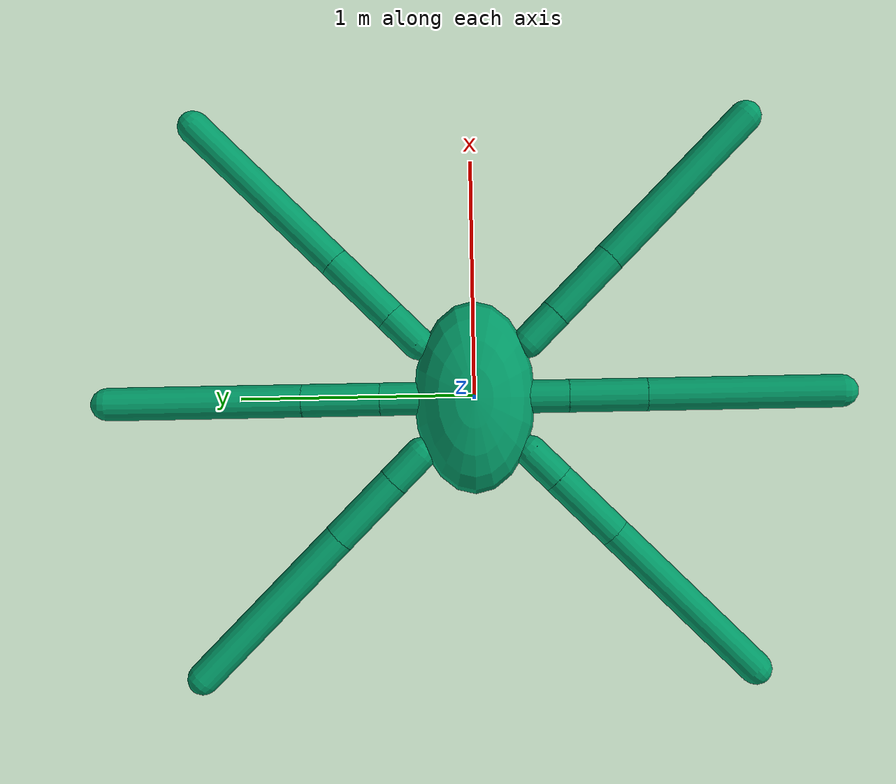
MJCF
<mujoco model="hexapod">
  <compiler angle="degree" coordinate="local" inertiafromgeom="true"/>
  <option integrator="RK4" timestep="0.01"/>
  <size nconmax="100"/>

  <default>
    <joint armature="1" damping="1" limited="true"/>
    <geom conaffinity="0" condim="3" density="5.0" friction="1 0.5 0.5" margin="0.01" rgba="0.0 0.6 0.4 1"/>
  </default>

  <asset>
    <texture type="skybox" builtin="gradient" width="100" height="100" rgb1="1 1 1" rgb2="0 0 0" />
    <texture name="texgeom" type="cube" builtin="flat" mark="cross" width="127" height="1278" rgb1="0.8 0.6 0.4" rgb2="0.8 0.6 0.4" markrgb="1 1 1" random="0.01" />
    <texture name="texplane" type="2d" width="1" height="1" file="wood2.png"/>
    <material name="MatPlane" reflectance="0.0" shininess="1" specular="1" texrepeat="10 10" texture="texplane"/>
    <material name='geom' texture="texgeom" texuniform="true" />
  </asset>

  <worldbody>
    <light cutoff="100" diffuse="1 1 1" dir="-0 0 -1.3" directional="true" exponent="1" pos="0 0 1.3" specular=".1 .1 .1"/>
    <geom conaffinity="1" condim="3" material="MatPlane" name="floor" pos="8 0 0" rgba="0.8 0.9 0.8 1" size="12 4 1" type="plane"/>
    <body name="torso" pos="0 0 0.75">
      <camera name="track" mode="track" pos="1 -7 3.2" xyaxes="1 0 0 0 0.5 1"/>
      <geom name="torso_geom" pos="0 0 0" size="0.35 0.22 0.15" type="ellipsoid"/>
      <joint armature="0" damping="0" limited="false" margin="0.01" name="root" pos="0 0 0" type="free"/>

      <body name="front_left_leg" pos="0.2 0.2 0">
        <joint axis="0 0 1" name="coxa_fl" pos="0.0 0.0 0.0" range="-20 20" type="hinge"/>
          <geom fromto="0.0 0.0 0.0 0.1 0.1 0.0" name="coxa_fl_geom" size="0.06" type="capsule"/>
          <body pos="0.1 0.1 0">
            <joint axis="-1 1 0" name="femur_fl" pos="0.0 0.0 0.0" range="-50 0" type="hinge"/>
            <geom fromto="0.0 0.0 0.0 0.2 0.2 0.0" name="femur_fl_geom" size="0.06" type="capsule"/>
             <body pos="0.2 0.2 0">
                <joint axis="-1 1 0" name="tibia_fl" pos="0.0 0.0 0.0" range="50 100" type="hinge"/>
                <geom fromto="0.0 0.0 0.0 0.5 0.5 0.0" name="tibia_fl_geom" size="0.06" type="capsule"/>
            </body>
          </body>
      </body>

      <body name="mid_left_leg" pos="0.0 0.2 0">
        <joint axis="0 0 1" name="coxa_ml" pos="0.0 0.0 0.0" range="-20 20" type="hinge"/>
          <geom fromto="0.0 0.0 0.0 0.0 0.14142 0.0" name="coxa_ml_geom" size="0.06" type="capsule"/>
          <body pos="0.0 0.14142 0">
            <joint axis="-1 0 0" name="femur_ml" pos="0.0 0.0 0.0" range="-50 0" type="hinge"/>
            <geom fromto="0.0 0.0 0.0 0.0 0.28284 0.0" name="femur_ml_geom" size="0.06" type="capsule"/>
             <body pos="0.0 0.28284 0">
                <joint axis="-1 0 0" name="tibia_ml" pos="0.0 0.0 0.0" range="50 100" type="hinge"/>
                <geom fromto="0.0 0.0 0.0 0.0 0.7071 0.0" name="tibia_ml_geom" size="0.06" type="capsule"/>
            </body>
          </body>
      </body>

      <body name="front_right_leg" pos="0.2 -0.2 0">
        <joint axis="0 0 1" name="coxa_fr" pos="0.0 0.0 0.0" range="-20 20" type="hinge"/>
          <geom fromto="0.0 0.0 0.0 0.1 -0.1 0.0" name="coxa_fr_geom" size="0.06" type="capsule"/>
          <body pos="0.1 -0.1 0">
            <joint axis="1 1 0" name="femur_fr" pos="0.0 0.0 0.0" range="-50 0" type="hinge"/>
            <geom fromto="0.0 0.0 0.0 0.2 -0.2 0.0" name="femur_fr_geom" size="0.06" type="capsule"/>
             <body pos="0.2 -0.2 0">
                <joint axis="1 1 0" name="tibia_fr" pos="0.0 0.0 0.0" range="50 100" type="hinge"/>
                <geom fromto="0.0 0.0 0.0 0.5 -0.5 0.0" name="tibia_fr_geom" size="0.06" type="capsule"/>
            </body>
          </body>
      </body>

      <body name="mid_right_leg" pos="0.0 -0.2 0">
        <joint axis="0 0 1" name="coxa_mr" pos="0.0 0.0 0.0" range="-20 20" type="hinge"/>
          <geom fromto="0.0 0.0 0.0 0.0 -0.14142 0.0" name="coxa_mr_geom" size="0.06" type="capsule"/>
          <body pos="0.0 -0.14142 0">
            <joint axis="1 0 0" name="femur_mr" pos="0.0 0.0 0.0" range="-50 0" type="hinge"/>
            <geom fromto="0.0 0.0 0.0 0.0 -0.28284 0.0" name="femur_mr_geom" size="0.06" type="capsule"/>
             <body pos="0.0 -0.28284 0">
                <joint axis="1 0 0" name="tibia_mr" pos="0.0 0.0 0.0" range="50 100" type="hinge"/>
                <geom fromto="0.0 0.0 0.0 0.0 -0.7071 0.0" name="tibia_mr_geom" size="0.06" type="capsule"/>
            </body>
          </body>
      </body>

      <body name="back_right_leg" pos="-0.2 -0.2 0">
        <joint axis="0 0 1" name="coxa_rr" pos="0.0 0.0 0.0" range="-20 20" type="hinge"/>
          <geom fromto="0.0 0.0 0.0 -0.1 -0.1 0.0" name="coxa_rr_geom" size="0.06" type="capsule"/>
          <body pos="-0.1 -0.1 0">
            <joint axis="1 -1 0" name="femur_rr" pos="0.0 0.0 0.0" range="-50 0" type="hinge"/>
            <geom fromto="0.0 0.0 0.0 -0.2 -0.2 0.0" name="femur_rr_geom" size="0.06" type="capsule"/>
             <body pos="-0.2 -0.2 0">
                <joint axis="1 -1 0" name="tibia_rr" pos="0.0 0.0 0.0" range="50 100" type="hinge"/>
                <geom fromto="0.0 0.0 0.0 -0.5 -0.5 0.0" name="tibia_rr_geom" size="0.06" type="capsule"/>
            </body>
          </body>
      </body>

      <body name="back_left_leg" pos="-0.2 0.2 0">
        <joint axis="0 0 1" name="coxa_rl" pos="0.0 0.0 0.0" range="-20 20" type="hinge"/>
          <geom fromto="0.0 0.0 0.0 -0.1 0.1 0.0" name="coxa_rl_geom" size="0.06" type="capsule"/>
          <body pos="-0.1 0.1 0">
            <joint axis="-1 -1 0" name="femur_rl" pos="0.0 0.0 0.0" range="-50 0" type="hinge"/>
            <geom fromto="0.0 0.0 0.0 -0.2 0.2 0.0" name="femur_rl_geom" size="0.06" type="capsule"/>
             <body pos="-0.2 0.2 0">
                <joint axis="-1 -1 0" name="tibia_rl" pos="0.0 0.0 0.0" range="50 100" type="hinge"/>
                <geom fromto="0.0 0.0 0.0 -0.5 0.5 0.0" name="tibia_rl_geom" size="0.06" type="capsule"/>
            </body>
          </body>
      </body>

    </body>
  </worldbody>
  <actuator>
    <motor ctrllimited="true" ctrlrange="-1.0 1.0" joint="coxa_fl" gear="90"/>
    <motor ctrllimited="true" ctrlrange="-1.0 1.0" joint="femur_fl" gear="90"/>
    <motor ctrllimited="true" ctrlrange="-1.0 1.0" joint="tibia_fl" gear="90"/>
    <motor ctrllimited="true" ctrlrange="-1.0 1.0" joint="coxa_fr" gear="90"/>
    <motor ctrllimited="true" ctrlrange="-1.0 1.0" joint="femur_fr" gear="90"/>
    <motor ctrllimited="true" ctrlrange="-1.0 1.0" joint="tibia_fr" gear="90"/>
    <motor ctrllimited="true" ctrlrange="-1.0 1.0" joint="coxa_rr" gear="90"/>
    <motor ctrllimited="true" ctrlrange="-1.0 1.0" joint="femur_rr" gear="90"/>
    <motor ctrllimited="true" ctrlrange="-1.0 1.0" joint="tibia_rr" gear="90"/>
    <motor ctrllimited="true" ctrlrange="-1.0 1.0" joint="coxa_rl" gear="90"/>
    <motor ctrllimited="true" ctrlrange="-1.0 1.0" joint="femur_rl" gear="90"/>
    <motor ctrllimited="true" ctrlrange="-1.0 1.0" joint="tibia_rl" gear="90"/>
    <motor ctrllimited="true" ctrlrange="-1.0 1.0" joint="coxa_mr" gear="90"/>
    <motor ctrllimited="true" ctrlrange="-1.0 1.0" joint="femur_mr" gear="90"/>
    <motor ctrllimited="true" ctrlrange="-1.0 1.0" joint="tibia_mr" gear="90"/>
    <motor ctrllimited="true" ctrlrange="-1.0 1.0" joint="coxa_ml" gear="90"/>
    <motor ctrllimited="true" ctrlrange="-1.0 1.0" joint="femur_ml" gear="90"/>
    <motor ctrllimited="true" ctrlrange="-1.0 1.0" joint="tibia_ml" gear="90"/>
  </actuator>
</mujoco>
